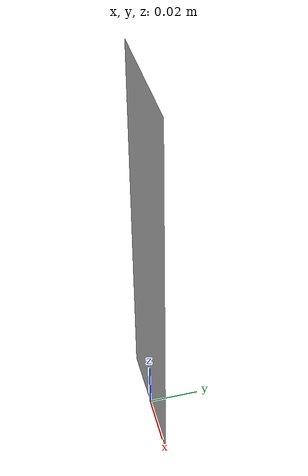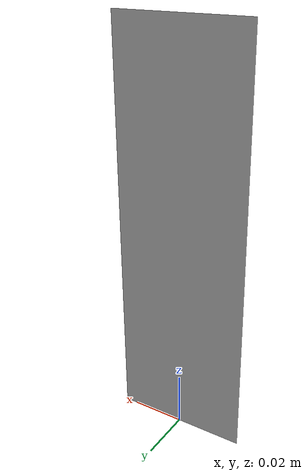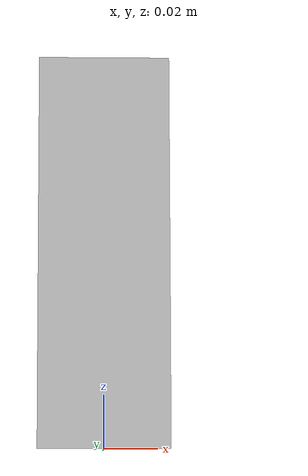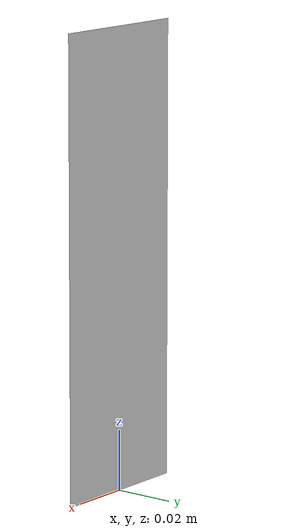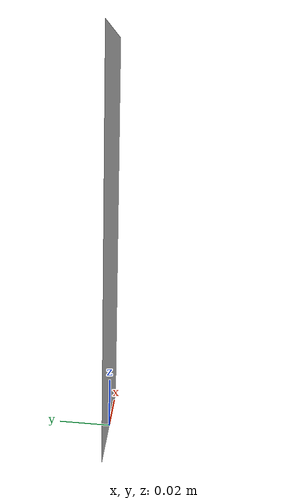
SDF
<?xml version='1.0' encoding='utf-8'?>
<sdf version="1.5">
  <model name="person_noncommunity_f1">
    <static>true</static>
    <link name="link">
      <visual name="visual">
        <geometry>
          <mesh>
            <uri>model://person_noncommunity_f1/meshes/person_noncommunity_f1.dae</uri>
          </mesh>
        </geometry>
        <material>
          <script>
            <uri>model://person_noncommunity_f1/materials/scripts</uri>
            <uri>model://person_noncommunity_f1/materials/textures</uri>
            <name>PersonNoncommunityF1</name>
          </script>
        </material>
      </visual>

      <collision name="collision">
        <geometry>
          <box>
            <size>0.05 0.005 0.15</size>
          </box>
        </geometry>
        <pose>0 0 0.075 0 0 0</pose>
      </collision>
    </link>
  </model>
</sdf>
